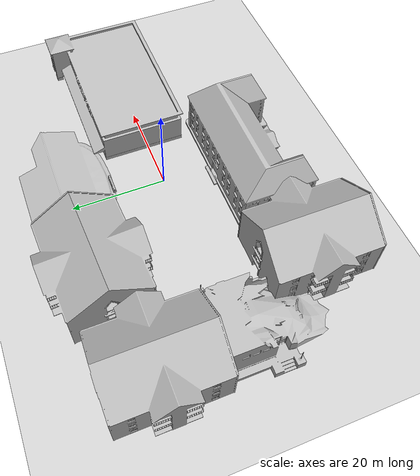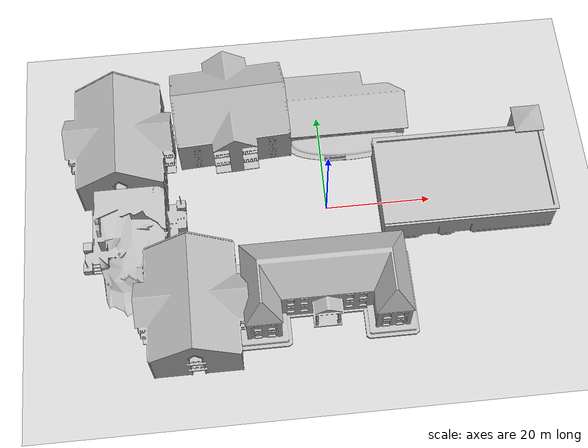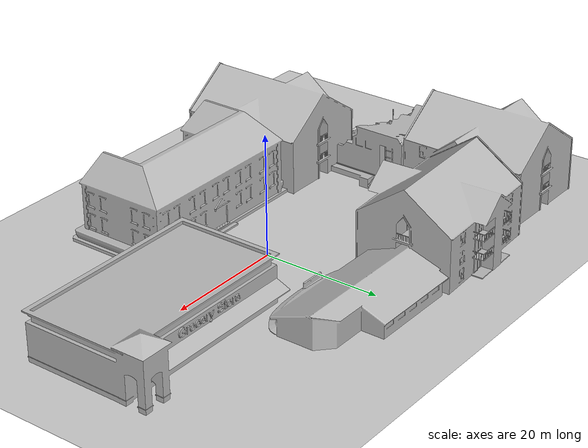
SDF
<sdf version="1.6">
 <world name="vrc_task_1">
  <scene>
   <ambient>0.4 0.4 0.4 1</ambient>
   <background>0.7 0.7 0.7 1</background>
   <shadows>1</shadows>
   <sky><clouds><speed>1</speed></clouds></sky>
  </scene>
  <physics name="default_physics" default="0" type="ode">
   <ode>
    <solver>
     <type>quick</type>
     <iters>10</iters>
     <sor>1</sor>
     <use_dynamic_moi_rescaling>0</use_dynamic_moi_rescaling>
    </solver>
    <constraints>
     <cfm>0</cfm>
     <erp>0.2</erp>
     <contact_max_correcting_vel>100</contact_max_correcting_vel>
     <contact_surface_layer>0.001</contact_surface_layer>
    </constraints>
   </ode>
   <max_step_size>0.004</max_step_size>
   <real_time_factor>1</real_time_factor>
   <real_time_update_rate>250</real_time_update_rate>
  </physics>
  <light name="sun" type="directional">
   <pose>0 0 10 0 -0 0</pose>
   <diffuse>0.8 0.8 0.8 1</diffuse>
   <specular>0.2 0.2 0.2 1</specular>
   <attenuation>
    <range>1000</range>
    <constant>0.9</constant>
    <linear>0.01</linear>
    <quadratic>0.001</quadratic>
   </attenuation>
   <direction>-0.5 0.1 -0.9</direction>
  </light>
  <model name="ground_plane">
   <static>1</static>
   <link name="link">
    <collision name="collision">
     <geometry><plane><normal>0 0 1</normal><size>100 100</size></plane></geometry>
     <surface><friction><ode><mu>100</mu><mu2>50</mu2></ode></friction></surface>
    </collision>
    <visual name="visual">
     <cast_shadows>0</cast_shadows>
     <geometry><plane><normal>0 0 1</normal><size>100 100</size></plane></geometry>
     <material>
      <script><uri>file://media/materials/scripts/gazebo.material</uri><name>Gazebo/Grey</name></script>
     </material>
    </visual>
   </link>
  </model>
  <gravity>0 0 -9.8066</gravity>
  <magnetic_field>6e-06 2.3e-05 -4.2e-05</magnetic_field>
  <atmosphere type="adiabatic"/>
  <spherical_coordinates>
   <surface_model>EARTH_WGS84</surface_model>
   <latitude_deg>0</latitude_deg>
   <longitude_deg>0</longitude_deg>
   <elevation>0</elevation>
   <heading_deg>0</heading_deg>
  </spherical_coordinates>
  <model name="jersey_barrier">
   <static>1</static>
   <link name="link">
    <visual name="visual">
     <geometry><mesh><uri>model://jersey_barrier/meshes/jersey_barrier.dae</uri></mesh></geometry>
    </visual>
    <collision name="upright">
     <pose>0 0 0.5715 0 -0 0</pose>
     <geometry><box><size>4.06542 0.3063 1.143</size></box></geometry>
    </collision>
    <collision name="base">
     <pose>0 0 0.032258 0 -0 0</pose>
     <geometry><box><size>4.06542 0.8107 0.064516</size></box></geometry>
    </collision>
    <collision name="base2">
     <pose>0 0 0.1 0 -0 0</pose>
     <geometry><box><size>4.06542 0.65 0.1</size></box></geometry>
    </collision>
    <collision name="base3">
     <pose>0 0 0.2 0 -0 0</pose>
     <geometry><box><size>4.06542 0.5 0.1</size></box></geometry>
    </collision>
    <collision name="left-angle">
     <pose>0 -0.224 0.2401 0.9 -0 0</pose>
     <geometry><box><size>4.06542 0.5 0.064516</size></box></geometry>
    </collision>
    <collision name="right-angle">
     <pose>0 0.224 0.2401 -0.9 0 0</pose>
     <geometry><box><size>4.06542 0.5 0.064516</size></box></geometry>
    </collision>
   </link>
   <pose>2.81355 10.6027 0 0 -0 0</pose>
  </model>
  <model name="school">
   <static>1</static>
   <link name="link">
    <collision name="collision">
     <geometry><mesh><uri>model://school/meshes/school.dae</uri></mesh></geometry>
    </collision>
    <visual name="visual"><geometry><mesh><uri>model://school/meshes/school.dae</uri></mesh></geometry></visual>
   </link>
   <pose>-2.31787 -16.011 0 0 -0 0</pose>
  </model>
  <model name="apartment_0">
   <static>1</static>
   <link name="link">
    <collision name="collision">
     <geometry><mesh><uri>model://apartment/meshes/apartment.dae</uri></mesh></geometry>
    </collision>
    <visual name="visual">
     <geometry><mesh><uri>model://apartment/meshes/apartment.dae</uri></mesh></geometry>
    </visual>
   </link>
   <pose>-16.9256 19.7453 0 0 -0 1.6218</pose>
  </model>
  <model name="apartment_1">
   <static>1</static>
   <link name="link">
    <collision name="collision">
     <geometry><mesh><uri>model://apartment/meshes/apartment.dae</uri></mesh></geometry>
    </collision>
    <visual name="visual">
     <geometry><mesh><uri>model://apartment/meshes/apartment.dae</uri></mesh></geometry>
    </visual>
   </link>
   <pose>-38.3425 14.8819 0 0 -0 0</pose>
  </model>
  <model name="collapsed_police_station">
   <static>1</static>
   <link name="link">
    <collision name="collision">
     <geometry>
      <mesh><uri>model://collapsed_police_station/meshes/collapsed_police_station.dae</uri></mesh>
     </geometry>
    </collision>
    <visual name="visual">
     <geometry>
      <mesh><uri>model://collapsed_police_station/meshes/collapsed_police_station.dae</uri></mesh>
     </geometry>
    </visual>
   </link>
   <pose>-36.7679 -7.29075 0 0 -0 0</pose>
  </model>
  <model name="apartment_2">
   <static>1</static>
   <link name="link">
    <collision name="collision">
     <geometry><mesh><uri>model://apartment/meshes/apartment.dae</uri></mesh></geometry>
    </collision>
    <visual name="visual">
     <geometry><mesh><uri>model://apartment/meshes/apartment.dae</uri></mesh></geometry>
    </visual>
   </link>
   <pose>-26.3365 -19.8583 0 0 -0 0</pose>
  </model>
  <model name="grocery_store">
   <static>1</static>
   <link name="link">
    <collision name="collision">
     <pose>0 0 4.04605 0 -0 0</pose>
     <geometry><box><size>32.1985 17.5425 8.09209</size></box></geometry>
    </collision>
    <visual name="visual">
     <pose>0 -1.96155 0 0 -0 0</pose>
     <geometry><mesh><uri>model://grocery_store/meshes/grocery_store.dae</uri></mesh></geometry>
    </visual>
   </link>
   <pose>26.0307 0.920077 0 0 -0 0</pose>
  </model>
  <model name="osrf_first_office">
   <static>1</static>
   <link name="link">
    <collision name="collision">
     <geometry><mesh><uri>model://osrf_first_office/meshes/osrf_first_office.dae</uri></mesh></geometry>
    </collision>
    <visual name="visual">
     <geometry><mesh><uri>model://osrf_first_office/meshes/osrf_first_office.dae</uri></mesh></geometry>
    </visual>
   </link>
   <pose>5.69365 21.3975 0 0 -0 0</pose>
  </model>
 </world>
</sdf>
